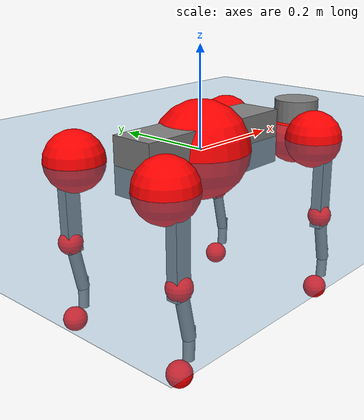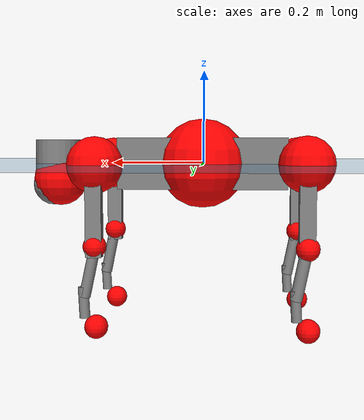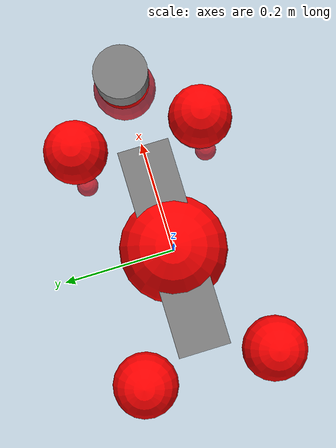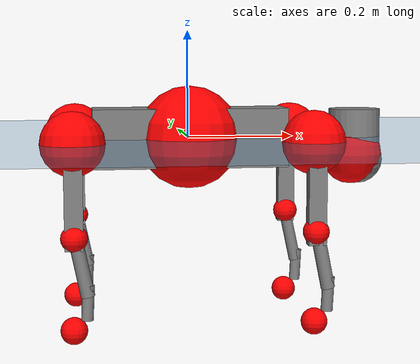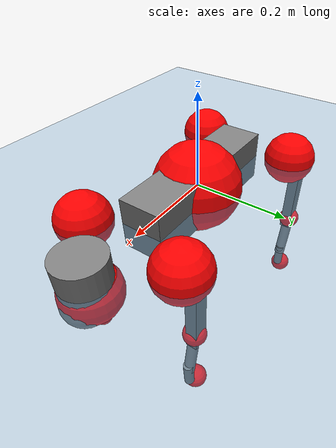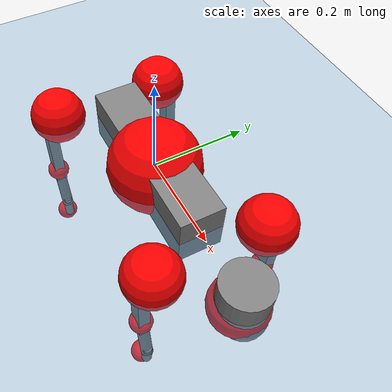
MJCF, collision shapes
<mujoco model="go2">
  <compiler angle="radian" assetdir="assets" balanceinertia="true" inertiafromgeom="false"/>

  <option timestep="0.005" density="1.2" viscosity="2e-05"/>

  <size nkey="1"/>

  <visual>
    <quality shadowsize="8192"/>
    <map shadowclip="0.5"/>
  </visual>

  <default>
    <default class="/">
      <geom contype="0" conaffinity="0" group="1" solref="-1000 -80"/>
      <site size="0.01 0.005 0.005" group="5"/>
      <general forcelimited="true" biastype="affine" gainprm="20" biasprm="0 -20 -0.5"/>
      <default class="go2">
        <joint armature="0.01" damping="0.01" frictionloss="0.2"/>
        <geom condim="1" margin="0.001"/>
        <default class="visual">
          <geom type="mesh" group="2"/>
        </default>
        <default class="collision">
          <geom group="3"/>
          <default class="foot">
            <geom size="0.022 0 0" condim="6" priority="1" friction="0.8 0.02 0.01" solimp="0.015 1 0.022"/>
          </default>
        </default>
        <default class="reward_collision_sphere">
          <geom group="5" rgba="1 0 0 1"/>
        </default>
      </default>
    </default>
  </default>

  <asset>
    <texture type="skybox" colorspace="auto" name="//unnamed_texture_0" builtin="gradient" rgb1="0.95 0.95 0.95" rgb2="0.95 0.95 0.95" width="100" height="600"/>
    <texture type="2d" colorspace="auto" name="texplane" builtin="checker" rgb1="0.345 0.575 0.748" rgb2="0.345 0.575 0.748" markrgb="1 1 1" width="512" height="512"/>
    <material name="MatPlane" class="/" texture="texplane" texuniform="true" texrepeat="2 2" specular="0.9"/>
    <material name="metal" class="/" rgba="0.9 0.95 0.95 1"/>
    <material name="black" class="/" rgba="0 0 0 1"/>
    <material name="white" class="/"/>
    <material name="gray" class="/" rgba="0.671705 0.692426 0.77427 1"/>
    <mesh name="base_0" class="/" file="base_0.obj"/>
    <mesh name="base_1" class="/" file="base_1.obj"/>
    <mesh name="base_2" class="/" file="base_2.obj"/>
    <mesh name="base_3" class="/" file="base_3.obj"/>
    <mesh name="base_4" class="/" file="base_4.obj"/>
    <mesh name="hip_0" class="/" file="hip_0.obj"/>
    <mesh name="hip_1" class="/" file="hip_1.obj"/>
    <mesh name="thigh_0" class="/" file="thigh_0.obj"/>
    <mesh name="thigh_1" class="/" file="thigh_1.obj"/>
    <mesh name="thigh_mirror_0" class="/" file="thigh_mirror_0.obj"/>
    <mesh name="thigh_mirror_1" class="/" file="thigh_mirror_1.obj"/>
    <mesh name="calf_0" class="/" file="calf_0.obj"/>
    <mesh name="calf_1" class="/" file="calf_1.obj"/>
    <mesh name="calf_mirror_0" class="/" file="calf_mirror_0.obj"/>
    <mesh name="calf_mirror_1" class="/" file="calf_mirror_1.obj"/>
    <mesh name="foot" class="/" file="foot.obj"/>
  </asset>

  <worldbody>
    <geom name="floor" class="/" size="100 100 0.125" type="plane" group="0" material="MatPlane"/>
    <light name="toplight_shadow" class="/" pos="0 0 5" dir="0.0990148 0.0990148 -0.990148" type="directional" ambient="0.04 0.04 0.04" diffuse="0.55 0.55 0.55" specular="0.12 0.12 0.12"/>
    <light name="toplight_fill" class="/" pos="0 0 5" dir="0.0990148 0.0990148 -0.990148" type="directional" castshadow="false" ambient="0.04 0.04 0.04" diffuse="0.3 0.3 0.3" specular="0.08 0.08 0.08"/>
    <body name="trunk" childclass="go2" pos="0.0026975 -0.000297181 -0.000275215" quat="1 -0.000220521 -0.000472344 -0.000119045">
      <inertial pos="0.0236065 -0.000290403 -0.00427567" quat="-0.00237634 0.713371 -0.00549852 0.700761" mass="6.33964" diaginertia="0.204038 0.110785 0.0068894"/>
      <joint name="//unnamed_joint_0" type="free" armature="0" damping="0" frictionloss="0"/>
      <geom name="//unnamed_geom_1" class="visual" material="black" mesh="base_0"/>
      <geom name="//unnamed_geom_2" class="visual" material="black" mesh="base_1"/>
      <geom name="//unnamed_geom_3" class="visual" material="black" mesh="base_2"/>
      <geom name="//unnamed_geom_4" class="visual" material="white" mesh="base_3"/>
      <geom name="//unnamed_geom_5" class="visual" material="gray" mesh="base_4"/>
      <geom name="trunk_1" class="collision" size="0.182757 0.045422 0.0553808" type="box"/>
      <geom name="trunk_2" class="collision" size="0.0485797 0.0437217" pos="0.320108 0 0.00776092" type="cylinder"/>
      <geom name="trunk_3" class="collision" size="0.0456649" pos="0.329093 0 -0.0465655"/>
      <geom name="//unnamed_geom_9" class="reward_collision_sphere" size="0.0971594"/>
      <geom name="//unnamed_geom_10" class="reward_collision_sphere" size="0.0582956" pos="0.314492 0 -0.0349241"/>
      <site name="imu" pos="-0.0337173 0.00293345 0.0192885" size="0.00971594"/>
      <camera name="track" pos="0 -2.03101 0" quat="0.707107 0.707107 0 0" mode="trackcom"/>
      <camera name="ego_camera" pos="0.350434 0 0.0349241" quat="-0.5 -0.5 0.5 0.5"/>
      <body name="FL_hip" pos="0.217229 0.0473063 -0.00067768" quat="0.999999 0.000959206 0.000564285 0.000245206">
        <inertial pos="-0.00874885 0.00235688 -0.000532741" quat="0.496057 0.499251 0.506763 0.497862" mass="0.625722" diaginertia="0.00158978 0.000622791 0.000134884"/>
        <joint name="FL_hip_joint" pos="0 0 0" axis="0.999923 -0.00495722 0.0113838" range="-1.05501 1.04974" armature="0.00839674" damping="0.00691812" frictionloss="0.199205"/>
        <geom name="//unnamed_geom_11" class="visual" material="metal" mesh="hip_0"/>
        <geom name="//unnamed_geom_12" class="visual" material="gray" mesh="hip_1"/>
        <geom name="//unnamed_geom_13" class="collision" size="0.0446933 0.0194319" pos="0 0.0812403 0" quat="0.707107 0.707107 0 0" type="cylinder"/>
        <geom name="//unnamed_geom_14" class="reward_collision_sphere" size="0.0582956" pos="0 0.0710852 0"/>
        <body name="FL_thigh" pos="-0.00225272 0.0965697 -0.000238156" quat="1 -0.000152159 5.38062e-05 0.000202847">
          <inertial pos="-0.00448863 -0.0224829 -0.0279155" quat="0.829091 0.0846739 -0.0215177 0.552245" mass="1.07198" diaginertia="0.0107878 0.0063559 0.000247879"/>
          <joint name="FL_thigh_joint" pos="0 0 0" axis="0.0129687 0.999897 0.0061354" range="-1.57222 3.49496" armature="0.0110465" damping="0" frictionloss="0.183329"/>
          <geom name="//unnamed_geom_15" class="visual" material="metal" mesh="thigh_0"/>
          <geom name="//unnamed_geom_16" class="visual" material="gray" mesh="thigh_1"/>
          <geom name="//unnamed_geom_17" class="collision" size="0.103475 0.011902 0.0165171" pos="0 0 -0.0826538" quat="0.707107 0 0.707107 0" type="box"/>
          <body name="FL_calf" pos="-0.000496935 -0.00300768 -0.164886" quat="1 -0.000487804 -0.000494587 0.000717997">
            <inertial pos="0.00775082 0.000436194 -0.109834" quat="0.702459 -0.000250124 -0.011612 0.711629" mass="0.228836" diaginertia="0.002632 0.00160013 1.47221e-05"/>
            <joint name="FL_calf_joint" pos="0 0 0" axis="0.00838813 0.999963 0.00190645" stiffness="0.00168636" range="-2.72998 -0.823963" armature="0.00972702" damping="0" frictionloss="0.193843"/>
            <geom name="//unnamed_geom_18" class="visual" material="gray" mesh="calf_0"/>
            <geom name="//unnamed_geom_19" class="visual" material="black" mesh="calf_1"/>
            <geom name="FL_calf0" class="collision" size="0.0116591 0.0582956" pos="0.00898548 0 -0.0465655" quat="0.994493 0 -0.104807 0" type="cylinder"/>
            <geom name="//unnamed_geom_21" class="collision" size="0.0106875 0.0315768" pos="0.0224637 0 -0.114862" quat="0.999688 0 0.0249974 0" type="cylinder"/>
            <geom name="//unnamed_geom_22" class="visual" pos="0 0 -0.165308" quat="1 0 0 0" material="black" mesh="foot"/>
            <geom name="FL_foot" class="foot" size="0.0200251" pos="-0.00224637 0 -0.165308"/>
            <geom name="//unnamed_geom_24" class="reward_collision_sphere" size="0.0242898"/>
            <geom name="//unnamed_geom_25" class="reward_collision_sphere" size="0.0242898" pos="-0.00224637 0 -0.165308"/>
            <site name="FL_foot" class="foot" pos="-0.00224637 0 -0.165308" size="0.00971594"/>
          </body>
        </body>
      </body>
      <body name="FR_hip" pos="0.215035 -0.0443831 -0.00200891" quat="1 -4.27774e-05 -4.09364e-06 0.000164358">
        <inertial pos="-0.00328852 -0.00280846 -0.00262517" quat="0.496374 0.501864 0.504952 0.496759" mass="0.637752" diaginertia="0.00162527 0.000651503 0.000140004"/>
        <joint name="FR_hip_joint" pos="0 0 0" axis="0.999927 -0.0061437 -0.0104509" range="-1.10446 1.04592" armature="0.00949327" damping="0.0185367" frictionloss="0.169567"/>
        <geom name="//unnamed_geom_26" class="visual" pos="0 2.08566e-09 8.94581e-08" quat="4.63268e-05 1 0 0" material="metal" mesh="hip_0"/>
        <geom name="//unnamed_geom_27" class="visual" pos="0 3.3811e-09 -2.21264e-07" quat="4.63268e-05 1 0 0" material="gray" mesh="hip_1"/>
        <geom name="//unnamed_geom_28" class="collision" size="0.0446933 0.0194319" pos="0 -0.0812403 0" quat="0.707107 0.707107 0 0" type="cylinder"/>
        <geom name="//unnamed_geom_29" class="reward_collision_sphere" size="0.0582956" pos="0 -0.0710852 0"/>
        <body name="FR_thigh" pos="0.000810215 -0.0961883 0.00184642" quat="1 -2.09729e-07 6.06897e-07 8.29398e-07">
          <inertial pos="-0.00435082 0.0252809 -0.0262018" quat="0.550949 -0.0196666 0.0848165 0.829984" mass="1.04824" diaginertia="0.0106817 0.00618939 0.000245319"/>
          <joint name="FR_thigh_joint" pos="0 0 0" axis="-1.08067e-05 -0.999968 0.00799914" range="-3.48326 1.57964" armature="0.0102356" damping="0.00658383" frictionloss="0.184713"/>
          <geom name="//unnamed_geom_30" class="visual" material="metal" mesh="thigh_mirror_0"/>
          <geom name="//unnamed_geom_31" class="visual" material="gray" mesh="thigh_mirror_1"/>
          <geom name="//unnamed_geom_32" class="collision" size="0.103475 0.011902 0.0165171" pos="0 0 -0.0826538" quat="0.707107 0 0.707107 0" type="box"/>
          <body name="FR_calf" pos="-0.000426691 2.18873e-05 -0.162486" quat="0.999999 -0.000755371 0.000899527 0.000590888">
            <inertial pos="0.00951893 -0.000813484 -0.107477" quat="0.706128 -0.0025465 0.00363366 0.70807" mass="0.216244" diaginertia="0.00271026 0.00164741 1.56044e-05"/>
            <joint name="FR_calf_joint" pos="0 0 0" axis="-0.00880569 -0.999958 -0.00250516" stiffness="0.00914785" range="0.78144 2.71436" armature="0.00942838" damping="0.0222325" frictionloss="0.220408"/>
            <geom name="//unnamed_geom_33" class="visual" material="gray" mesh="calf_mirror_0"/>
            <geom name="//unnamed_geom_34" class="visual" material="black" mesh="calf_mirror_1"/>
            <geom name="FR_calf0" class="collision" size="0.0126307 0.0582956" pos="0.0112319 0 -0.0465655" quat="0.995004 0 -0.0998334 0" type="cylinder"/>
            <geom name="//unnamed_geom_36" class="collision" size="0.0106875 0.0315768" pos="0.0224637 0 -0.114862" quat="0.999688 0 0.0249974 0" type="cylinder"/>
            <geom name="//unnamed_geom_37" class="visual" pos="0 0 -0.165308" quat="1 0 0 0" material="black" mesh="foot"/>
            <geom name="FR_foot" class="foot" size="0.0217429" pos="-0.00224637 0 -0.165308"/>
            <geom name="//unnamed_geom_39" class="reward_collision_sphere" size="0.0242898"/>
            <geom name="//unnamed_geom_40" class="reward_collision_sphere" size="0.0242898" pos="-0.00224637 0 -0.165308"/>
            <site name="FR_foot" class="foot" pos="-0.00224637 0 -0.165308" size="0.00971594"/>
          </body>
        </body>
      </body>
      <body name="RL_hip" pos="-0.215107 0.0449444 0.00110737" quat="1 3.75824e-05 -8.00345e-05 -0.000215325">
        <inertial pos="0.00878715 -0.000423867 -0.000223828" quat="0.512872 0.495048 0.50185 0.489934" mass="0.620911" diaginertia="0.00160714 0.000647753 0.000131274"/>
        <joint name="RL_hip_joint" pos="0 0 0" axis="-1 0.000669154 6.35347e-05" range="-1.01036 1.03527" armature="0.00971105" damping="0.0128104" frictionloss="0.200429"/>
        <geom name="//unnamed_geom_41" class="visual" pos="-3.02374e-09 0 -5.92722e-07" quat="4.63268e-05 0 1 0" material="metal" mesh="hip_0"/>
        <geom name="//unnamed_geom_42" class="visual" pos="-4.90184e-09 0 -5.2566e-07" quat="4.63268e-05 0 1 0" material="gray" mesh="hip_1"/>
        <geom name="//unnamed_geom_43" class="collision" size="0.0446933 0.0194319" pos="0 0.0812403 0" quat="0.707107 0.707107 0 0" type="cylinder"/>
        <geom name="//unnamed_geom_44" class="reward_collision_sphere" size="0.0582956" pos="0 0.0710852 0"/>
        <body name="RL_thigh" pos="0.00125791 0.0970742 -0.000138218" quat="1 2.64183e-05 -3.30904e-05 -0.000166223">
          <inertial pos="-0.0051251 -0.0198296 -0.0248611" quat="0.834768 0.0848029 -0.0262485 0.543399" mass="1.06946" diaginertia="0.0106629 0.00650413 0.000245527"/>
          <joint name="RL_thigh_joint" pos="0 0 0" axis="0.00748331 0.99995 -0.00666364" range="-0.486931 4.56428" armature="0.0110764" damping="0.00181858" frictionloss="0.219387"/>
          <geom name="//unnamed_geom_45" class="visual" material="metal" mesh="thigh_0"/>
          <geom name="//unnamed_geom_46" class="visual" material="gray" mesh="thigh_1"/>
          <geom name="//unnamed_geom_47" class="collision" size="0.103475 0.011902 0.0165171" pos="0 0 -0.0826538" quat="0.707107 0 0.707107 0" type="box"/>
          <body name="RL_calf" pos="-0.00188282 0.0022896 -0.168113" quat="0.999999 0.000212643 -0.00102621 -0.000651751">
            <inertial pos="0.00715592 -0.00065356 -0.107263" quat="0.708079 0.0025301 -0.00207404 0.706126" mass="0.213092" diaginertia="0.00263888 0.00157111 1.50015e-05"/>
            <joint name="RL_calf_joint" pos="0 0 0" axis="0.0022624 0.99994 -0.0106778" range="-2.74353 -0.869119" armature="0.00916626" damping="0.0101562" frictionloss="0.171634"/>
            <geom name="//unnamed_geom_48" class="visual" material="gray" mesh="calf_0"/>
            <geom name="//unnamed_geom_49" class="visual" material="black" mesh="calf_1"/>
            <geom name="RL_calf0" class="collision" size="0.0126307 0.0582956" pos="0.0112319 0 -0.0465655" quat="0.995004 0 -0.0998334 0" type="cylinder"/>
            <geom name="//unnamed_geom_51" class="collision" size="0.0106875 0.0315768" pos="0.0224637 0 -0.114862" quat="0.999688 0 0.0249974 0" type="cylinder"/>
            <geom name="//unnamed_geom_52" class="visual" pos="0 0 -0.165308" quat="1 0 0 0" material="black" mesh="foot"/>
            <geom name="RL_foot" class="foot" size="0.0170639" pos="-0.00224637 0 -0.165308"/>
            <geom name="//unnamed_geom_54" class="reward_collision_sphere" size="0.0242898"/>
            <geom name="//unnamed_geom_55" class="reward_collision_sphere" size="0.0242898" pos="-0.00224637 0 -0.165308"/>
            <site name="RL_foot" class="foot" pos="-0.00224637 0 -0.165308" size="0.00971594"/>
          </body>
        </body>
      </body>
      <body name="RR_hip" pos="-0.219517 -0.0489117 -0.000221933" quat="1 0.000242235 0.000104215 3.35012e-05">
        <inertial pos="0.00797578 -0.0011891 0.000136822" quat="0.491559 0.49848 0.493887 0.515716" mass="0.628137" diaginertia="0.00162175 0.000664865 0.000139258"/>
        <joint name="RR_hip_joint" pos="0 0 0" axis="-0.999906 0.00887803 0.0104371" stiffness="0.000927517" range="-1.04419 1.0311" armature="0.00992524" damping="0.00620172" frictionloss="0.197136"/>
        <geom name="//unnamed_geom_56" class="visual" pos="3.02001e-09 2.08566e-09 -6.8218e-07" quat="2.14617e-09 4.63268e-05 4.63268e-05 -1" material="metal" mesh="hip_0"/>
        <geom name="//unnamed_geom_57" class="visual" pos="4.91106e-09 3.3811e-09 -3.04396e-07" quat="2.14617e-09 4.63268e-05 4.63268e-05 -1" material="gray" mesh="hip_1"/>
        <geom name="//unnamed_geom_58" class="collision" size="0.0446933 0.0194319" pos="0 -0.0812403 0" quat="0.707107 0.707107 0 0" type="cylinder"/>
        <geom name="//unnamed_geom_59" class="reward_collision_sphere" size="0.0582956" pos="0 -0.0710852 0"/>
        <body name="RR_thigh" pos="8.85477e-05 -0.0966994 0.00132942" quat="1 1.12246e-06 9.4016e-05 8.17482e-06">
          <inertial pos="-0.00511438 0.0224652 -0.0262822" quat="0.550274 -0.00886896 0.0786493 0.831225" mass="1.07121" diaginertia="0.0105674 0.00651141 0.000255484"/>
          <joint name="RR_thigh_joint" pos="0 0 0" axis="-0.00188778 -0.999984 -0.00534991" range="-4.54459 0.513825" armature="0.0108356" damping="0.00359142" frictionloss="0.188725"/>
          <geom name="//unnamed_geom_60" class="visual" material="metal" mesh="thigh_mirror_0"/>
          <geom name="//unnamed_geom_61" class="visual" material="gray" mesh="thigh_mirror_1"/>
          <geom name="//unnamed_geom_62" class="collision" size="0.103475 0.011902 0.0165171" pos="0 0 -0.0826538" quat="0.707107 0 0.707107 0" type="box"/>
          <body name="RR_calf" pos="0.000501074 -0.000392295 -0.165355" quat="1 -0.000158928 -0.000256677 -0.000306732">
            <inertial pos="0.00426895 -0.00199608 -0.107199" quat="0.702842 -0.00265851 0.00136124 0.711339" mass="0.228717" diaginertia="0.00260745 0.00163419 1.49682e-05"/>
            <joint name="RR_calf_joint" pos="0 0 0" axis="-0.0040444 -0.999989 0.00228991" stiffness="0.00263106" range="0.848599 2.7796" armature="0.00981603" damping="0.00934415" frictionloss="0.220777"/>
            <geom name="//unnamed_geom_63" class="visual" material="gray" mesh="calf_mirror_0"/>
            <geom name="//unnamed_geom_64" class="visual" material="black" mesh="calf_mirror_1"/>
            <geom name="RR_calf0" class="collision" size="0.0126307 0.0582956" pos="0.0112319 0 -0.0465655" quat="0.995004 0 -0.0998334 0" type="cylinder"/>
            <geom name="//unnamed_geom_66" class="collision" size="0.0106875 0.0315768" pos="0.0224637 0 -0.114862" quat="0.999688 0 0.0249974 0" type="cylinder"/>
            <geom name="//unnamed_geom_67" class="visual" pos="0 0 -0.165308" quat="1 0 0 0" material="black" mesh="foot"/>
            <geom name="RR_foot" class="foot" size="0.023171" pos="-0.00224637 0 -0.165308"/>
            <geom name="//unnamed_geom_69" class="reward_collision_sphere" size="0.0242898"/>
            <geom name="//unnamed_geom_70" class="reward_collision_sphere" size="0.0242898" pos="-0.00224637 0 -0.165308"/>
            <site name="RR_foot" class="foot" pos="-0.00224637 0 -0.165308" size="0.00971594"/>
          </body>
        </body>
      </body>
    </body>
  </worldbody>

  <contact>
    <pair class="/" geom1="floor" geom2="FL_foot" name="//unnamed_contact_0"/>
    <pair class="/" geom1="floor" geom2="FR_foot" name="//unnamed_contact_1"/>
    <pair class="/" geom1="floor" geom2="RL_foot" name="//unnamed_contact_2"/>
    <pair class="/" geom1="floor" geom2="RR_foot" name="//unnamed_contact_3"/>
  </contact>

  <actuator>
    <general name="FL_hip" class="/" joint="FL_hip_joint" forcerange="-22.9721 22.9721" gainprm="19.4413" biasprm="0 -19.4413 -0.474392"/>
    <general name="FL_thigh" class="/" joint="FL_thigh_joint" forcerange="-20.8435 20.8435" gainprm="19.4413" biasprm="0 -19.4413 -0.474392"/>
    <general name="FL_calf" class="/" joint="FL_calf_joint" forcerange="-44.8836 44.8836" gainprm="19.4413" biasprm="0 -19.4413 -0.474392"/>
    <general name="FR_hip" class="/" joint="FR_hip_joint" forcerange="-22.8983 22.8983" gainprm="19.4413" biasprm="0 -19.4413 -0.474392"/>
    <general name="FR_thigh" class="/" joint="FR_thigh_joint" forcerange="-22.777 22.777" gainprm="19.4413" biasprm="0 -19.4413 -0.474392"/>
    <general name="FR_calf" class="/" joint="FR_calf_joint" forcerange="-46.778 46.778" gainprm="19.4413" biasprm="0 -19.4413 -0.474392"/>
    <general name="RL_hip" class="/" joint="RL_hip_joint" forcerange="-22.8541 22.8541" gainprm="19.4413" biasprm="0 -19.4413 -0.474392"/>
    <general name="RL_thigh" class="/" joint="RL_thigh_joint" forcerange="-24.4231 24.4231" gainprm="19.4413" biasprm="0 -19.4413 -0.474392"/>
    <general name="RL_calf" class="/" joint="RL_calf_joint" forcerange="-43.2303 43.2303" gainprm="19.4413" biasprm="0 -19.4413 -0.474392"/>
    <general name="RR_hip" class="/" joint="RR_hip_joint" forcerange="-22.6523 22.6523" gainprm="19.4413" biasprm="0 -19.4413 -0.474392"/>
    <general name="RR_thigh" class="/" joint="RR_thigh_joint" forcerange="-22.2205 22.2205" gainprm="19.4413" biasprm="0 -19.4413 -0.474392"/>
    <general name="RR_calf" class="/" joint="RR_calf_joint" forcerange="-39.9999 39.9999" gainprm="19.4413" biasprm="0 -19.4413 -0.474392"/>
  </actuator>

  <sensor>
    <gyro site="imu" name="imu_angular_velocity"/>
    <velocimeter site="imu" name="imu_linear_velocity"/>
    <framelinvel objtype="site" objname="FL_foot" name="FL_foot_global_linear_velocity"/>
    <framelinvel objtype="site" objname="FR_foot" name="FR_foot_global_linear_velocity"/>
    <framelinvel objtype="site" objname="RL_foot" name="RL_foot_global_linear_velocity"/>
    <framelinvel objtype="site" objname="RR_foot" name="RR_foot_global_linear_velocity"/>
  </sensor>

  <keyframe>
    <key name="home" qpos="0 0 0.325 1 0 0 0 0.1 0.8 -1.5 -0.1 -0.8 1.5 -0.1 0.8 -1.5 0.1 -0.8 1.5"/>
  </keyframe>
</mujoco>
